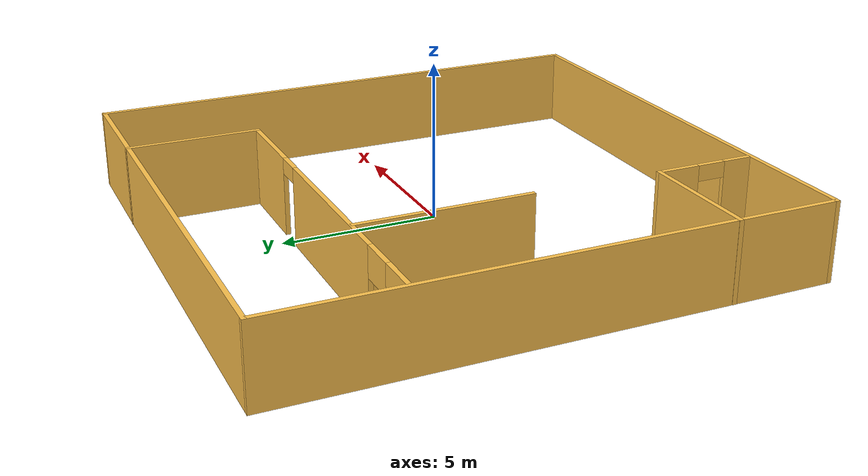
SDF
<?xml version='1.0'?>
<sdf version='1.7'>
  <model name='ecuadorian_restaurant'>
    <pose>-0.918184 0.262306 0 0 -0 0</pose>
    <link name='Wall_10'>
      <collision name='Wall_10_Collision'>
        <geometry>
          <box>
            <size>17 0.15 2.5</size>
          </box>
        </geometry>
        <pose>0 0 1.25 0 -0 0</pose>
      </collision>
      <visual name='Wall_10_Visual'>
        <pose>0 0 1.25 0 -0 0</pose>
        <geometry>
          <box>
            <size>17 0.15 2.5</size>
          </box>
        </geometry>
        <material>
          <script>
            <uri>file://media/materials/scripts/gazebo.material</uri>
            <name>Gazebo/Grey</name>
          </script>
          <ambient>1 0.764706 0.305882 1</ambient>
        </material>
        <meta>
          <layer>0</layer>
        </meta>
      </visual>
      <pose>7.92837 -0.005736 0 0 -0 -1.5708</pose>
    </link>
    <link name='Wall_12'>
      <collision name='Wall_12_Collision'>
        <geometry>
          <box>
            <size>4.25 0.15 2.5</size>
          </box>
        </geometry>
        <pose>0 0 1.25 0 -0 0</pose>
      </collision>
      <visual name='Wall_12_Visual'>
        <pose>0 0 1.25 0 -0 0</pose>
        <geometry>
          <box>
            <size>4.25 0.15 2.5</size>
          </box>
        </geometry>
        <material>
          <script>
            <uri>file://media/materials/scripts/gazebo.material</uri>
            <name>Gazebo/Grey</name>
          </script>
          <ambient>1 0.764706 0.305882 1</ambient>
        </material>
        <meta>
          <layer>0</layer>
        </meta>
      </visual>
      <pose>4.30286 6.38074 0 0 -0 -1.5708</pose>
    </link>
    <link name='Wall_14'>
      <pose>-1.74714 4.33074 0 0 -0 3.14159</pose>
      <visual name='Wall_14_Visual_0'>
        <pose>-4.69483 0 1.25 0 -0 0</pose>
        <geometry>
          <box>
            <size>2.86034 0.15 2.5</size>
          </box>
        </geometry>
        <material>
          <script>
            <uri>file://media/materials/scripts/gazebo.material</uri>
            <name>Gazebo/Grey</name>
          </script>
          <ambient>1 0.764706 0.305882 1</ambient>
        </material>
        <meta>
          <layer>0</layer>
        </meta>
      </visual>
      <collision name='Wall_14_Collision_0'>
        <geometry>
          <box>
            <size>2.86034 0.15 2.5</size>
          </box>
        </geometry>
        <pose>-4.69483 0 1.25 0 -0 0</pose>
      </collision>
      <visual name='Wall_14_Visual_1'>
        <pose>0.620154 0 1.25 0 -0 0</pose>
        <geometry>
          <box>
            <size>5.96964 0.15 2.5</size>
          </box>
        </geometry>
        <material>
          <script>
            <uri>file://media/materials/scripts/gazebo.material</uri>
            <name>Gazebo/Grey</name>
          </script>
          <ambient>1 0.764706 0.305882 1</ambient>
        </material>
        <meta>
          <layer>0</layer>
        </meta>
      </visual>
      <collision name='Wall_14_Collision_1'>
        <geometry>
          <box>
            <size>5.96964 0.15 2.5</size>
          </box>
        </geometry>
        <pose>0.620154 0 1.25 0 -0 0</pose>
      </collision>
      <visual name='Wall_14_Visual_2'>
        <pose>4.86499 0 0.375 0 -0 0</pose>
        <geometry>
          <box>
            <size>2.52003 0.15 0.75</size>
          </box>
        </geometry>
        <material>
          <script>
            <uri>file://media/materials/scripts/gazebo.material</uri>
            <name>Gazebo/Grey</name>
          </script>
          <ambient>1 0.764706 0.305882 1</ambient>
        </material>
        <meta>
          <layer>0</layer>
        </meta>
      </visual>
      <collision name='Wall_14_Collision_2'>
        <geometry>
          <box>
            <size>2.52003 0.15 0.75</size>
          </box>
        </geometry>
        <pose>4.86499 0 0.375 0 -0 0</pose>
      </collision>
      <visual name='Wall_14_Visual_3'>
        <pose>5.46499 0 1.625 0 -0 0</pose>
        <geometry>
          <box>
            <size>1.32003 0.15 1.75</size>
          </box>
        </geometry>
        <material>
          <script>
            <uri>file://media/materials/scripts/gazebo.material</uri>
            <name>Gazebo/Grey</name>
          </script>
          <ambient>1 0.764706 0.305882 1</ambient>
        </material>
        <meta>
          <layer>0</layer>
        </meta>
      </visual>
      <collision name='Wall_14_Collision_3'>
        <geometry>
          <box>
            <size>1.32003 0.15 1.75</size>
          </box>
        </geometry>
        <pose>5.46499 0 1.625 0 -0 0</pose>
      </collision>
      <visual name='Wall_14_Visual_4'>
        <pose>4.20497 0 2.025 0 -0 0</pose>
        <geometry>
          <box>
            <size>1.2 0.15 0.95</size>
          </box>
        </geometry>
        <material>
          <script>
            <uri>file://media/materials/scripts/gazebo.material</uri>
            <name>Gazebo/Grey</name>
          </script>
          <ambient>1 0.764706 0.305882 1</ambient>
        </material>
        <meta>
          <layer>0</layer>
        </meta>
      </visual>
      <collision name='Wall_14_Collision_4'>
        <geometry>
          <box>
            <size>1.2 0.15 0.95</size>
          </box>
        </geometry>
        <pose>4.20497 0 2.025 0 -0 0</pose>
      </collision>
      <visual name='Wall_14_Visual_5'>
        <pose>-2.81466 0 2.25 0 -0 0</pose>
        <geometry>
          <box>
            <size>0.9 0.15 0.5</size>
          </box>
        </geometry>
        <material>
          <script>
            <uri>file://media/materials/scripts/gazebo.material</uri>
            <name>Gazebo/Grey</name>
          </script>
          <ambient>1 0.764706 0.305882 1</ambient>
        </material>
        <meta>
          <layer>0</layer>
        </meta>
      </visual>
      <collision name='Wall_14_Collision_5'>
        <geometry>
          <box>
            <size>0.9 0.15 0.5</size>
          </box>
        </geometry>
        <pose>-2.81466 0 2.25 0 -0 0</pose>
      </collision>
    </link>
    <link name='Wall_16'>
      <collision name='Wall_16_Collision'>
        <geometry>
          <box>
            <size>5.5 0.15 2.5</size>
          </box>
        </geometry>
        <pose>0 0 1.25 0 -0 0</pose>
      </collision>
      <visual name='Wall_16_Visual'>
        <pose>0 0 1.25 0 -0 0</pose>
        <geometry>
          <box>
            <size>5.5 0.15 2.5</size>
          </box>
        </geometry>
        <material>
          <script>
            <uri>file://media/materials/scripts/gazebo.material</uri>
            <name>Gazebo/Grey</name>
          </script>
          <ambient>1 0.764706 0.305882 1</ambient>
        </material>
        <meta>
          <layer>0</layer>
        </meta>
      </visual>
      <pose>-3.99932 1.60464 0 0 -0 -1.5708</pose>
    </link>
    <link name='Wall_2'>
      <collision name='Wall_2_Collision'>
        <geometry>
          <box>
            <size>16 0.15 2.5</size>
          </box>
        </geometry>
        <pose>0 0 1.25 0 -0 0</pose>
      </collision>
      <visual name='Wall_2_Visual'>
        <pose>0 0 1.25 0 -0 0</pose>
        <geometry>
          <box>
            <size>16 0.15 2.5</size>
          </box>
        </geometry>
        <material>
          <script>
            <uri>file://media/materials/scripts/gazebo.material</uri>
            <name>Gazebo/Grey</name>
          </script>
          <ambient>1 0.764706 0.305882 1</ambient>
        </material>
        <meta>
          <layer>0</layer>
        </meta>
      </visual>
      <pose>0.003371 -8.43074 0 0 -0 0</pose>
    </link>
    <link name='Wall_23'>
      <collision name='Wall_23_Collision'>
        <geometry>
          <box>
            <size>4 0.15 2.5</size>
          </box>
        </geometry>
        <pose>0 0 1.25 0 -0 0</pose>
      </collision>
      <visual name='Wall_23_Visual'>
        <pose>0 0 1.25 0 -0 0</pose>
        <geometry>
          <box>
            <size>4 0.15 2.5</size>
          </box>
        </geometry>
        <material>
          <script>
            <uri>file://media/materials/scripts/gazebo.material</uri>
            <name>Gazebo/Grey</name>
          </script>
          <ambient>1 0.764706 0.305882 1</ambient>
        </material>
        <meta>
          <layer>0</layer>
        </meta>
      </visual>
      <pose>-6.00337 -5.20526 0 0 -0 0</pose>
    </link>
    <link name='Wall_24'>
      <pose>-4.07837 -6.75526 0 0 -0 -1.5708</pose>
      <visual name='Wall_24_Visual_0'>
        <pose>-0.923548 0 1.25 0 -0 0</pose>
        <geometry>
          <box>
            <size>1.40291 0.15 2.5</size>
          </box>
        </geometry>
        <material>
          <script>
            <uri>file://media/materials/scripts/gazebo.material</uri>
            <name>Gazebo/Grey</name>
          </script>
          <ambient>1 0.764706 0.305882 1</ambient>
        </material>
        <meta>
          <layer>0</layer>
        </meta>
      </visual>
      <collision name='Wall_24_Collision_0'>
        <geometry>
          <box>
            <size>1.40291 0.15 2.5</size>
          </box>
        </geometry>
        <pose>-0.923548 0 1.25 0 -0 0</pose>
      </collision>
      <visual name='Wall_24_Visual_1'>
        <pose>1.15145 0 1.25 0 -0 0</pose>
        <geometry>
          <box>
            <size>0.947095 0.15 2.5</size>
          </box>
        </geometry>
        <material>
          <script>
            <uri>file://media/materials/scripts/gazebo.material</uri>
            <name>Gazebo/Grey</name>
          </script>
          <ambient>1 0.764706 0.305882 1</ambient>
        </material>
        <meta>
          <layer>0</layer>
        </meta>
      </visual>
      <collision name='Wall_24_Collision_1'>
        <geometry>
          <box>
            <size>0.947095 0.15 2.5</size>
          </box>
        </geometry>
        <pose>1.15145 0 1.25 0 -0 0</pose>
      </collision>
      <visual name='Wall_24_Visual_2'>
        <pose>0.227905 0 2.25 0 -0 0</pose>
        <geometry>
          <box>
            <size>0.9 0.15 0.5</size>
          </box>
        </geometry>
        <material>
          <script>
            <uri>file://media/materials/scripts/gazebo.material</uri>
            <name>Gazebo/Grey</name>
          </script>
          <ambient>1 0.764706 0.305882 1</ambient>
        </material>
        <meta>
          <layer>0</layer>
        </meta>
      </visual>
      <collision name='Wall_24_Collision_2'>
        <geometry>
          <box>
            <size>0.9 0.15 0.5</size>
          </box>
        </geometry>
        <pose>0.227905 0 2.25 0 -0 0</pose>
      </collision>
    </link>
    <link name='Wall_6'>
      <collision name='Wall_6_Collision'>
        <geometry>
          <box>
            <size>17 0.15 2.5</size>
          </box>
        </geometry>
        <pose>0 0 1.25 0 -0 0</pose>
      </collision>
      <visual name='Wall_6_Visual'>
        <pose>0 0 1.25 0 -0 0</pose>
        <geometry>
          <box>
            <size>17 0.15 2.5</size>
          </box>
        </geometry>
        <material>
          <script>
            <uri>file://media/materials/scripts/gazebo.material</uri>
            <name>Gazebo/Grey</name>
          </script>
          <ambient>1 0.764706 0.305882 1</ambient>
        </material>
        <meta>
          <layer>0</layer>
        </meta>
      </visual>
      <pose>-7.92163 -0.005736 0 0 -0 1.5708</pose>
    </link>
    <link name='Wall_8'>
      <collision name='Wall_8_Collision'>
        <geometry>
          <box>
            <size>16 0.15 2.5</size>
          </box>
        </geometry>
        <pose>0 0 1.25 0 -0 0</pose>
      </collision>
      <visual name='Wall_8_Visual'>
        <pose>0 0 1.25 0 -0 0</pose>
        <geometry>
          <box>
            <size>16 0.15 2.5</size>
          </box>
        </geometry>
        <material>
          <script>
            <uri>file://media/materials/scripts/gazebo.material</uri>
            <name>Gazebo/Grey</name>
          </script>
          <ambient>1 0.764706 0.305882 1</ambient>
        </material>
        <meta>
          <layer>0</layer>
        </meta>
      </visual>
      <pose>0.003371 8.41926 0 0 -0 0</pose>
    </link>
    <static>1</static>
  </model>
</sdf>
